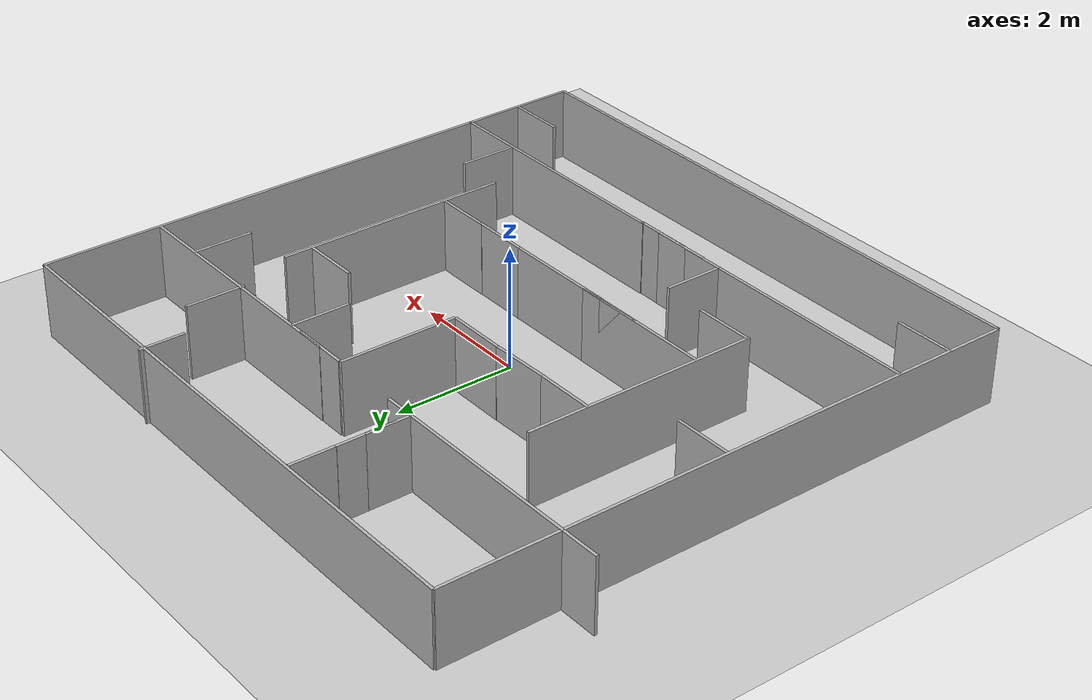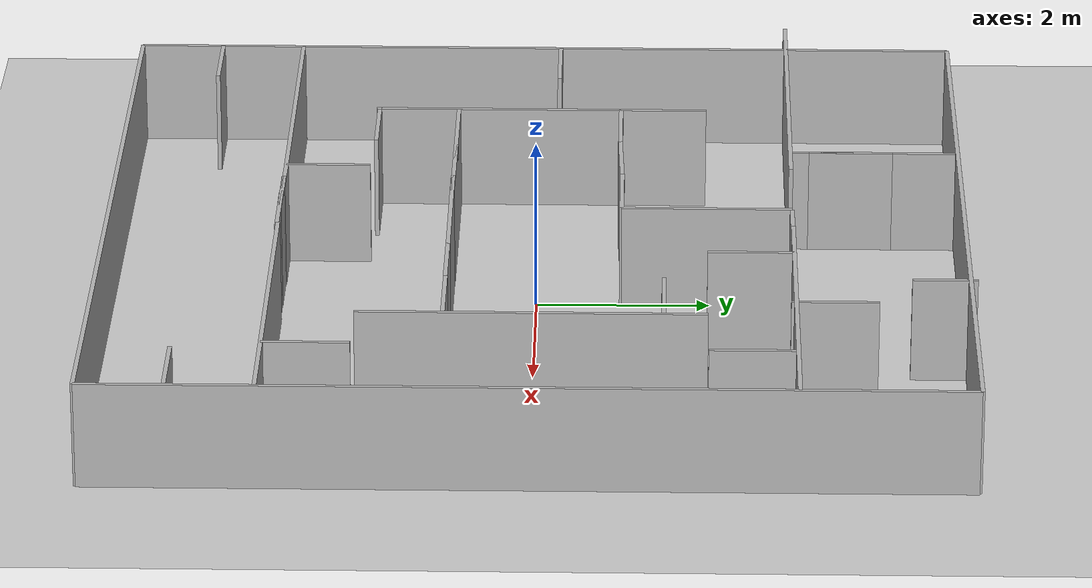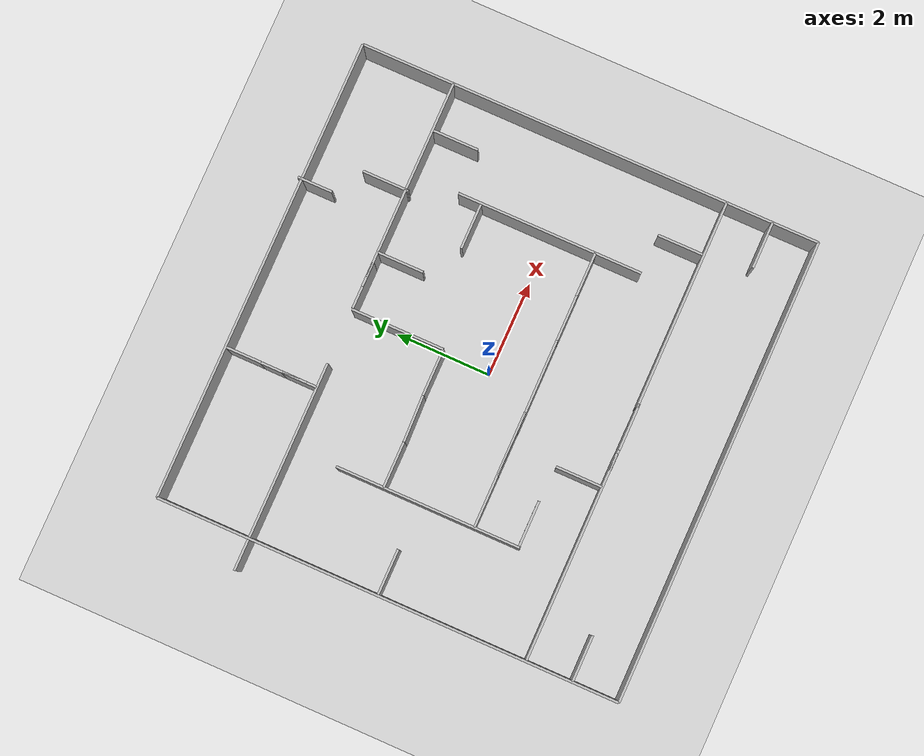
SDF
<sdf version="1.12">
 <world name="complex_maze">
  <physics name="1ms" type="ode">
   <max_step_size>0.001</max_step_size>
   <real_time_factor>1</real_time_factor>
   <real_time_update_rate>1000</real_time_update_rate>
  </physics>
  <plugin name="gz::sim::systems::Physics" filename="gz-sim-physics-system"/>
  <plugin name="gz::sim::systems::UserCommands" filename="gz-sim-user-commands-system"/>
  <plugin name="gz::sim::systems::SceneBroadcaster" filename="gz-sim-scene-broadcaster-system"/>
  <plugin name="gz::sim::systems::Contact" filename="gz-sim-contact-system"/>
  <plugin name="gz::sim::systems::Sensors" filename="gz-sim-sensors-system">
   <render_engine>ogre2</render_engine>
  </plugin>
  <gravity>0 0 -9.8000000000000007</gravity>
  <magnetic_field>5.5644999999999998e-06 2.2875799999999999e-05 -4.2388400000000002e-05</magnetic_field>
  <atmosphere type="adiabatic"/>
  <scene>
   <ambient>0.400000006 0.400000006 0.400000006 1</ambient>
   <background>0.699999988 0.699999988 0.699999988 1</background>
   <shadows>true</shadows>
  </scene>
  <model name="ground_plane">
   <static>true</static>
   <link name="link">
    <collision name="collision">
     <geometry><plane><normal>0 0 1</normal><size>49.009211999999984 49.009211999999984</size></plane></geometry>
    </collision>
    <visual name="visual">
     <geometry><plane><normal>0 0 1</normal><size>49.009211999999984 49.009211999999984</size></plane></geometry>
     <material>
      <ambient>0.800000012 0.800000012 0.800000012 1</ambient>
      <diffuse>0.800000012 0.800000012 0.800000012 1</diffuse>
      <specular>0.800000012 0.800000012 0.800000012 1</specular>
     </material>
    </visual>
    <inertial>
     <mass>1</mass>
     <inertia><ixx>1</ixx><ixy>0</ixy><ixz>0</ixz><iyy>1</iyy><iyz>0</iyz><izz>1</izz></inertia>
    </inertial>
   </link>
  </model>
  <model name="wall_1">
   <static>true</static>
   <pose>0 -4.9009211999999982 0.61261514999999978 0 0 0</pose>
   <link name="link">
    <collision name="collision">
     <geometry><box><size>9.8018423999999964 0.049009212000000003 1.2252302999999996</size></box></geometry>
    </collision>
    <visual name="visual">
     <geometry><box><size>9.8018423999999964 0.049009212000000003 1.2252302999999996</size></box></geometry>
    </visual>
    <inertial>
     <mass>1</mass>
     <inertia><ixx>1</ixx><ixy>0</ixy><ixz>0</ixz><iyy>1</iyy><iyz>0</iyz><izz>1</izz></inertia>
    </inertial>
   </link>
  </model>
  <model name="wall_2">
   <static>true</static>
   <pose>0 4.9009211999999982 0.61261514999999978 0 0 0</pose>
   <link name="link">
    <collision name="collision">
     <geometry><box><size>9.8018423999999964 0.049009212000000003 1.2252302999999996</size></box></geometry>
    </collision>
    <visual name="visual">
     <geometry><box><size>9.8018423999999964 0.049009212000000003 1.2252302999999996</size></box></geometry>
    </visual>
    <inertial>
     <mass>1</mass>
     <inertia><ixx>1</ixx><ixy>0</ixy><ixz>0</ixz><iyy>1</iyy><iyz>0</iyz><izz>1</izz></inertia>
    </inertial>
   </link>
  </model>
  <model name="wall_3">
   <static>true</static>
   <pose>-4.9009211999999982 0 0.61261514999999978 0 0 1.5708000000000013</pose>
   <link name="link">
    <collision name="collision">
     <geometry><box><size>9.8018423999999964 0.049009212000000003 1.2252302999999996</size></box></geometry>
    </collision>
    <visual name="visual">
     <geometry><box><size>9.8018423999999964 0.049009212000000003 1.2252302999999996</size></box></geometry>
    </visual>
    <inertial>
     <mass>1</mass>
     <inertia><ixx>1</ixx><ixy>0</ixy><ixz>0</ixz><iyy>1</iyy><iyz>0</iyz><izz>1</izz></inertia>
    </inertial>
   </link>
  </model>
  <model name="wall_4">
   <static>true</static>
   <pose>4.9009211999999982 0 0.61261514999999978 0 0 1.5708000000000013</pose>
   <link name="link">
    <collision name="collision">
     <geometry><box><size>9.8018423999999964 0.049009212000000003 1.2252302999999996</size></box></geometry>
    </collision>
    <visual name="visual">
     <geometry><box><size>9.8018423999999964 0.049009212000000003 1.2252302999999996</size></box></geometry>
    </visual>
    <inertial>
     <mass>1</mass>
     <inertia><ixx>1</ixx><ixy>0</ixy><ixz>0</ixz><iyy>1</iyy><iyz>0</iyz><izz>1</izz></inertia>
    </inertial>
   </link>
  </model>
  <model name="wall_5">
   <static>true</static>
   <pose>-2.6955066599999991 -2.9405527199999999 0.61261514999999978 0 0 0</pose>
   <link name="link">
    <collision name="collision">
     <geometry><box><size>4.4108290800000001 0.049009212000000003 1.2252302999999996</size></box></geometry>
    </collision>
    <visual name="visual">
     <geometry><box><size>4.4108290800000001 0.049009212000000003 1.2252302999999996</size></box></geometry>
    </visual>
    <inertial>
     <mass>1</mass>
     <inertia><ixx>1</ixx><ixy>0</ixy><ixz>0</ixz><iyy>1</iyy><iyz>0</iyz><izz>1</izz></inertia>
    </inertial>
   </link>
  </model>
  <model name="wall_6">
   <static>true</static>
   <pose>2.6955066599999991 -2.9405527199999999 0.61261514999999978 0 0 0</pose>
   <link name="link">
    <collision name="collision">
     <geometry><box><size>4.4108290800000001 0.049009212000000003 1.2252302999999996</size></box></geometry>
    </collision>
    <visual name="visual">
     <geometry><box><size>4.4108290800000001 0.049009212000000003 1.2252302999999996</size></box></geometry>
    </visual>
    <inertial>
     <mass>1</mass>
     <inertia><ixx>1</ixx><ixy>0</ixy><ixz>0</ixz><iyy>1</iyy><iyz>0</iyz><izz>1</izz></inertia>
    </inertial>
   </link>
  </model>
  <model name="wall_7">
   <static>true</static>
   <pose>-1.7050595283508301 -0.98018401861190796 0.61261498928070068 0 0 0</pose>
   <link name="link">
    <collision name="collision">
     <geometry><box><size>2.4504605999999991 0.049009212000000003 1.2252302999999996</size></box></geometry>
    </collision>
    <visual name="visual">
     <geometry><box><size>2.4504605999999991 0.049009212000000003 1.2252302999999996</size></box></geometry>
    </visual>
    <inertial>
     <mass>1</mass>
     <inertia><ixx>1</ixx><ixy>0</ixy><ixz>0</ixz><iyy>1</iyy><iyz>0</iyz><izz>1</izz></inertia>
    </inertial>
   </link>
  </model>
  <model name="wall_8">
   <static>true</static>
   <pose>-1.3515255038600635 -0.98018423999999993 0.61261514999999978 0 0 0</pose>
   <link name="link">
    <collision name="collision">
     <geometry><box><size>0.98018423999999993 0.049009212000000003 1.2252302999999996</size></box></geometry>
    </collision>
    <visual name="visual">
     <geometry><box><size>0.98018423999999993 0.049009212000000003 1.2252302999999996</size></box></geometry>
    </visual>
    <inertial>
     <mass>1</mass>
     <inertia><ixx>1</ixx><ixy>0</ixy><ixz>0</ixz><iyy>1</iyy><iyz>0</iyz><izz>1</izz></inertia>
    </inertial>
   </link>
  </model>
  <model name="wall_9">
   <static>true</static>
   <pose>1.5323846656936739 -0.98018423999999993 0.61261514999999978 0 0 0</pose>
   <link name="link">
    <collision name="collision">
     <geometry><box><size>0.98018423999999993 0.049009212000000003 1.2252302999999996</size></box></geometry>
    </collision>
    <visual name="visual">
     <geometry><box><size>0.98018423999999993 0.049009212000000003 1.2252302999999996</size></box></geometry>
    </visual>
    <inertial>
     <mass>1</mass>
     <inertia><ixx>1</ixx><ixy>0</ixy><ixz>0</ixz><iyy>1</iyy><iyz>0</iyz><izz>1</izz></inertia>
    </inertial>
   </link>
  </model>
  <model name="wall_12">
   <static>true</static>
   <pose>-0.49801604541688427 0.98018423999999993 0.61261514999999978 0 0 0</pose>
   <link name="link">
    <collision name="collision">
     <geometry><box><size>0.98018423999999993 0.049009212000000003 1.2252302999999996</size></box></geometry>
    </collision>
    <visual name="visual">
     <geometry><box><size>0.98018423999999993 0.049009212000000003 1.2252302999999996</size></box></geometry>
    </visual>
    <inertial>
     <mass>1</mass>
     <inertia><ixx>1</ixx><ixy>0</ixy><ixz>0</ixz><iyy>1</iyy><iyz>0</iyz><izz>1</izz></inertia>
    </inertial>
   </link>
  </model>
  <model name="wall_15">
   <static>true</static>
   <pose>-3.373927116394043 2.9405500888824463 0.61261498928070068 0 0 0</pose>
   <link name="link">
    <collision name="collision">
     <geometry><box><size>4.4108290800000001 0.049009212000000003 1.2252302999999996</size></box></geometry>
    </collision>
    <visual name="visual">
     <geometry><box><size>4.4108290800000001 0.049009212000000003 1.2252302999999996</size></box></geometry>
    </visual>
    <inertial>
     <mass>1</mass>
     <inertia><ixx>1</ixx><ixy>0</ixy><ixz>0</ixz><iyy>1</iyy><iyz>0</iyz><izz>1</izz></inertia>
    </inertial>
   </link>
  </model>
  <model name="wall_16">
   <static>true</static>
   <pose>2.6955066599999991 2.9405527199999999 0.61261514999999978 0 0 0</pose>
   <link name="link">
    <collision name="collision">
     <geometry><box><size>4.4108290800000001 0.049009212000000003 1.2252302999999996</size></box></geometry>
    </collision>
    <visual name="visual">
     <geometry><box><size>4.4108290800000001 0.049009212000000003 1.2252302999999996</size></box></geometry>
    </visual>
    <inertial>
     <mass>1</mass>
     <inertia><ixx>1</ixx><ixy>0</ixy><ixz>0</ixz><iyy>1</iyy><iyz>0</iyz><izz>1</izz></inertia>
    </inertial>
   </link>
  </model>
  <model name="wall_17">
   <static>true</static>
   <pose>-1.6781930960284417 3.6499424803424829 0.61261514999999978 0 0 1.5708000357176291</pose>
   <link name="link">
    <collision name="collision">
     <geometry><box><size>0.98018423999999993 0.049009212000000003 1.2252302999999996</size></box></geometry>
    </collision>
    <visual name="visual">
     <geometry><box><size>0.98018423999999993 0.049009212000000003 1.2252302999999996</size></box></geometry>
    </visual>
    <inertial>
     <mass>1</mass>
     <inertia><ixx>1</ixx><ixy>0</ixy><ixz>0</ixz><iyy>1</iyy><iyz>0</iyz><izz>1</izz></inertia>
    </inertial>
   </link>
  </model>
  <model name="wall_18">
   <static>true</static>
   <pose>-2.9405527199999999 0 0.61261514999999978 0 0 1.5708000000000013</pose>
   <link name="link">
    <collision name="collision">
     <geometry><box><size>3.9207369599999997 0.049009212000000003 1.2252302999999996</size></box></geometry>
    </collision>
    <visual name="visual">
     <geometry><box><size>3.9207369599999997 0.049009212000000003 1.2252302999999996</size></box></geometry>
    </visual>
    <inertial>
     <mass>1</mass>
     <inertia><ixx>1</ixx><ixy>0</ixy><ixz>0</ixz><iyy>1</iyy><iyz>0</iyz><izz>1</izz></inertia>
    </inertial>
   </link>
  </model>
  <model name="wall_20">
   <static>true</static>
   <pose>-1.4790867456897638 0.9634183801852938 0.61261514999999978 0 0 0.030003099442409507</pose>
   <link name="link">
    <collision name="collision">
     <geometry><box><size>0.98018423999999993 0.049009212000000003 1.2252302999999996</size></box></geometry>
    </collision>
    <visual name="visual">
     <geometry><box><size>0.98018423999999993 0.049009212000000003 1.2252302999999996</size></box></geometry>
    </visual>
    <inertial>
     <mass>1</mass>
     <inertia><ixx>1</ixx><ixy>0</ixy><ixz>0</ixz><iyy>1</iyy><iyz>0</iyz><izz>1</izz></inertia>
    </inertial>
   </link>
  </model>
  <model name="wall_21">
   <static>true</static>
   <pose>2.9405527199999999 0 0.61261514999999978 0 0 1.5708000000000013</pose>
   <link name="link">
    <collision name="collision">
     <geometry><box><size>3.9207369599999997 0.049009212000000003 1.2252302999999996</size></box></geometry>
    </collision>
    <visual name="visual">
     <geometry><box><size>3.9207369599999997 0.049009212000000003 1.2252302999999996</size></box></geometry>
    </visual>
    <inertial>
     <mass>1</mass>
     <inertia><ixx>1</ixx><ixy>0</ixy><ixz>0</ixz><iyy>1</iyy><iyz>0</iyz><izz>1</izz></inertia>
    </inertial>
   </link>
  </model>
  <model name="wall_22">
   <static>true</static>
   <pose>2.58518385887146 3.3730485439300537 0.61261498928070068 0 0 1.5708000357176291</pose>
   <link name="link">
    <collision name="collision">
     <geometry><box><size>0.98018423999999993 0.049009212000000003 1.2252302999999996</size></box></geometry>
    </collision>
    <visual name="visual">
     <geometry><box><size>0.98018423999999993 0.049009212000000003 1.2252302999999996</size></box></geometry>
    </visual>
    <inertial>
     <mass>1</mass>
     <inertia><ixx>1</ixx><ixy>0</ixy><ixz>0</ixz><iyy>1</iyy><iyz>0</iyz><izz>1</izz></inertia>
    </inertial>
   </link>
  </model>
  <model name="wall_23">
   <static>true</static>
   <pose>0.077949759150531289 -0.98263463983952493 0.61261514999999978 0 0 0.0034538498982187547</pose>
   <link name="link">
    <collision name="collision">
     <geometry><box><size>1.9603684799999999 0.049009212000000003 1.2252302999999996</size></box></geometry>
    </collision>
    <visual name="visual">
     <geometry><box><size>1.9603684799999999 0.049009212000000003 1.2252302999999996</size></box></geometry>
    </visual>
    <inertial>
     <mass>1</mass>
     <inertia><ixx>1</ixx><ixy>0</ixy><ixz>0</ixz><iyy>1</iyy><iyz>0</iyz><izz>1</izz></inertia>
    </inertial>
   </link>
  </model>
  <model name="wall_24">
   <static>true</static>
   <pose>0 1.9603684799999999 0.61261514999999978 0 0 1.5708000000000013</pose>
   <link name="link">
    <collision name="collision">
     <geometry><box><size>1.9603684799999999 0.049009212000000003 1.2252302999999996</size></box></geometry>
    </collision>
    <visual name="visual">
     <geometry><box><size>1.9603684799999999 0.049009212000000003 1.2252302999999996</size></box></geometry>
    </visual>
    <inertial>
     <mass>1</mass>
     <inertia><ixx>1</ixx><ixy>0</ixy><ixz>0</ixz><iyy>1</iyy><iyz>0</iyz><izz>1</izz></inertia>
    </inertial>
   </link>
  </model>
  <model name="wall_25">
   <static>true</static>
   <pose>-4.4108290800000001 -3.9207369599999997 0.61261514999999978 0 0 0</pose>
   <link name="link">
    <collision name="collision">
     <geometry><box><size>0.98018423999999993 0.049009212000000003 1.2252302999999996</size></box></geometry>
    </collision>
    <visual name="visual">
     <geometry><box><size>0.98018423999999993 0.049009212000000003 1.2252302999999996</size></box></geometry>
    </visual>
    <inertial>
     <mass>1</mass>
     <inertia><ixx>1</ixx><ixy>0</ixy><ixz>0</ixz><iyy>1</iyy><iyz>0</iyz><izz>1</izz></inertia>
    </inertial>
   </link>
  </model>
  <model name="wall_26">
   <static>true</static>
   <pose>-0.37076742791461936 -2.9481629694658467 0.61261514999999978 0 0 0</pose>
   <link name="link">
    <collision name="collision">
     <geometry><box><size>0.98018423999999993 0.049009212000000003 1.2252302999999996</size></box></geometry>
    </collision>
    <visual name="visual">
     <geometry><box><size>0.98018423999999993 0.049009212000000003 1.2252302999999996</size></box></geometry>
    </visual>
    <inertial>
     <mass>1</mass>
     <inertia><ixx>1</ixx><ixy>0</ixy><ixz>0</ixz><iyy>1</iyy><iyz>0</iyz><izz>1</izz></inertia>
    </inertial>
   </link>
  </model>
  <model name="wall_27">
   <static>true</static>
   <pose>-1.6753014816643805 4.5064492413217154 0.61261514999999978 0 0 1.5708000357176291</pose>
   <link name="link">
    <collision name="collision">
     <geometry><box><size>0.73513817999999997 0.049009212000000003 1.2252302999999996</size></box></geometry>
    </collision>
    <visual name="visual">
     <geometry><box><size>0.73513817999999997 0.049009212000000003 1.2252302999999996</size></box></geometry>
    </visual>
    <inertial>
     <mass>1</mass>
     <inertia><ixx>1</ixx><ixy>0</ixy><ixz>0</ixz><iyy>1</iyy><iyz>0</iyz><izz>1</izz></inertia>
    </inertial>
   </link>
  </model>
  <model name="wall_28">
   <static>true</static>
   <pose>0.073131497318347671 -2.9521189437621107 0.61261514999999978 0 0 0</pose>
   <link name="link">
    <collision name="collision">
     <geometry><box><size>0.98018423999999993 0.049009212000000003 1.2252302999999996</size></box></geometry>
    </collision>
    <visual name="visual">
     <geometry><box><size>0.98018423999999993 0.049009212000000003 1.2252302999999996</size></box></geometry>
    </visual>
    <inertial>
     <mass>1</mass>
     <inertia><ixx>1</ixx><ixy>0</ixy><ixz>0</ixz><iyy>1</iyy><iyz>0</iyz><izz>1</izz></inertia>
    </inertial>
   </link>
  </model>
  <model name="wall_29">
   <static>true</static>
   <pose>4.4108290800000001 -3.9207369599999997 0.61261514999999978 0 0 0</pose>
   <link name="link">
    <collision name="collision">
     <geometry><box><size>0.98018423999999993 0.049009212000000003 1.2252302999999996</size></box></geometry>
    </collision>
    <visual name="visual">
     <geometry><box><size>0.98018423999999993 0.049009212000000003 1.2252302999999996</size></box></geometry>
    </visual>
    <inertial>
     <mass>1</mass>
     <inertia><ixx>1</ixx><ixy>0</ixy><ixz>0</ixz><iyy>1</iyy><iyz>0</iyz><izz>1</izz></inertia>
    </inertial>
   </link>
  </model>
  <model name="wall_30">
   <static>true</static>
   <pose>-1.6784139369848436 3.3120576866007609 0.61261514999999978 0 0 1.5708000357176291</pose>
   <link name="link">
    <collision name="collision">
     <geometry><box><size>0.73513817999999997 0.049009212000000003 1.2252302999999996</size></box></geometry>
    </collision>
    <visual name="visual">
     <geometry><box><size>0.73513817999999997 0.049009212000000003 1.2252302999999996</size></box></geometry>
    </visual>
    <inertial>
     <mass>1</mass>
     <inertia><ixx>1</ixx><ixy>0</ixy><ixz>0</ixz><iyy>1</iyy><iyz>0</iyz><izz>1</izz></inertia>
    </inertial>
   </link>
  </model>
  <model name="wall_32">
   <static>true</static>
   <pose>3.7650925159454345 -2.450460624694824 0.61261478066444397 0 0 1.5708000357176291</pose>
   <link name="link">
    <collision name="collision">
     <geometry><box><size>0.98018423999999993 0.049009212000000003 1.2252302999999996</size></box></geometry>
    </collision>
    <visual name="visual">
     <geometry><box><size>0.98018423999999993 0.049009212000000003 1.2252302999999996</size></box></geometry>
    </visual>
    <inertial>
     <mass>1</mass>
     <inertia><ixx>1</ixx><ixy>0</ixy><ixz>0</ixz><iyy>1</iyy><iyz>0</iyz><izz>1</izz></inertia>
    </inertial>
   </link>
  </model>
  <model name="wall_33">
   <static>true</static>
   <pose>-4.4108259201049798 0.20045450031757353 0.61261478066444397 0 0 0</pose>
   <link name="link">
    <collision name="collision">
     <geometry><box><size>0.98018423999999993 0.049009212000000003 1.2252302999999996</size></box></geometry>
    </collision>
    <visual name="visual">
     <geometry><box><size>0.98018423999999993 0.049009212000000003 1.2252302999999996</size></box></geometry>
    </visual>
    <inertial>
     <mass>1</mass>
     <inertia><ixx>1</ixx><ixy>0</ixy><ixz>0</ixz><iyy>1</iyy><iyz>0</iyz><izz>1</izz></inertia>
    </inertial>
   </link>
  </model>
  <model name="wall_35">
   <static>true</static>
   <pose>-1.2118786215782165 -2.4504609584808348 0.61261478066444397 0 0 1.5708000357176291</pose>
   <link name="link">
    <collision name="collision">
     <geometry><box><size>0.98018423999999993 0.049009212000000003 1.2252302999999996</size></box></geometry>
    </collision>
    <visual name="visual">
     <geometry><box><size>0.98018423999999993 0.049009212000000003 1.2252302999999996</size></box></geometry>
    </visual>
    <inertial>
     <mass>1</mass>
     <inertia><ixx>1</ixx><ixy>0</ixy><ixz>0</ixz><iyy>1</iyy><iyz>0</iyz><izz>1</izz></inertia>
    </inertial>
   </link>
  </model>
  <model name="wall_37">
   <static>true</static>
   <pose>-2.4504605999999991 -1.9244314634988779 0.61261514999999978 0 0 0</pose>
   <link name="link">
    <collision name="collision">
     <geometry><box><size>0.98018423999999993 0.049009212000000003 1.2252302999999996</size></box></geometry>
    </collision>
    <visual name="visual">
     <geometry><box><size>0.98018423999999993 0.049009212000000003 1.2252302999999996</size></box></geometry>
    </visual>
    <inertial>
     <mass>1</mass>
     <inertia><ixx>1</ixx><ixy>0</ixy><ixz>0</ixz><iyy>1</iyy><iyz>0</iyz><izz>1</izz></inertia>
    </inertial>
   </link>
  </model>
  <model name="wall_38">
   <static>true</static>
   <pose>2.4504605999999991 -0.9769695434960175 0.61261514999999978 0 0 0</pose>
   <link name="link">
    <collision name="collision">
     <geometry><box><size>0.98018423999999993 0.049009212000000003 1.2252302999999996</size></box></geometry>
    </collision>
    <visual name="visual">
     <geometry><box><size>0.98018423999999993 0.049009212000000003 1.2252302999999996</size></box></geometry>
    </visual>
    <inertial>
     <mass>1</mass>
     <inertia><ixx>1</ixx><ixy>0</ixy><ixz>0</ixz><iyy>1</iyy><iyz>0</iyz><izz>1</izz></inertia>
    </inertial>
   </link>
  </model>
  <model name="wall_46">
   <static>true</static>
   <pose>1.2315318584442139 2.4504594564437863 0.61261478066444397 0 0 1.5708000357176291</pose>
   <link name="link">
    <collision name="collision">
     <geometry><box><size>0.98018423999999993 0.049009212000000003 1.2252302999999996</size></box></geometry>
    </collision>
    <visual name="visual">
     <geometry><box><size>0.98018423999999993 0.049009212000000003 1.2252302999999996</size></box></geometry>
    </visual>
    <inertial>
     <mass>1</mass>
     <inertia><ixx>1</ixx><ixy>0</ixy><ixz>0</ixz><iyy>1</iyy><iyz>0</iyz><izz>1</izz></inertia>
    </inertial>
   </link>
  </model>
  <model name="wall_47">
   <static>true</static>
   <pose>-2.4504605999999991 0.94993393654975866 0.61261514999999978 0 0 0</pose>
   <link name="link">
    <collision name="collision">
     <geometry><box><size>0.98018423999999993 0.049009212000000003 1.2252302999999996</size></box></geometry>
    </collision>
    <visual name="visual">
     <geometry><box><size>0.98018423999999993 0.049009212000000003 1.2252302999999996</size></box></geometry>
    </visual>
    <inertial>
     <mass>1</mass>
     <inertia><ixx>1</ixx><ixy>0</ixy><ixz>0</ixz><iyy>1</iyy><iyz>0</iyz><izz>1</izz></inertia>
    </inertial>
   </link>
  </model>
  <model name="wall_48">
   <static>true</static>
   <pose>2.4504605999999991 1.4702763599999999 0.61261514999999978 0 0 0</pose>
   <link name="link">
    <collision name="collision">
     <geometry><box><size>0.98018423999999993 0.049009212000000003 1.2252302999999996</size></box></geometry>
    </collision>
    <visual name="visual">
     <geometry><box><size>0.98018423999999993 0.049009212000000003 1.2252302999999996</size></box></geometry>
    </visual>
    <inertial>
     <mass>1</mass>
     <inertia><ixx>1</ixx><ixy>0</ixy><ixz>0</ixz><iyy>1</iyy><iyz>0</iyz><izz>1</izz></inertia>
    </inertial>
   </link>
  </model>
  <model name="wall_50">
   <static>true</static>
   <pose>3.8858833312988277 2.45046112537384 0.61261478066444397 0 0 1.5708000357176291</pose>
   <link name="link">
    <collision name="collision">
     <geometry><box><size>0.98018423999999993 0.049009212000000003 1.2252302999999996</size></box></geometry>
    </collision>
    <visual name="visual">
     <geometry><box><size>0.98018423999999993 0.049009212000000003 1.2252302999999996</size></box></geometry>
    </visual>
    <inertial>
     <mass>1</mass>
     <inertia><ixx>1</ixx><ixy>0</ixy><ixz>0</ixz><iyy>1</iyy><iyz>0</iyz><izz>1</izz></inertia>
    </inertial>
   </link>
  </model>
  <model name="wall_57">
   <static>true</static>
   <pose>0.51577399525292855 2.9354165903282539 0.61261514999999978 0 0 0</pose>
   <link name="link">
    <collision name="collision">
     <geometry><box><size>0.98018423999999993 0.049009212000000003 1.2252302999999996</size></box></geometry>
    </collision>
    <visual name="visual">
     <geometry><box><size>0.98018423999999993 0.049009212000000003 1.2252302999999996</size></box></geometry>
    </visual>
    <inertial>
     <mass>1</mass>
     <inertia><ixx>1</ixx><ixy>0</ixy><ixz>0</ixz><iyy>1</iyy><iyz>0</iyz><izz>1</izz></inertia>
    </inertial>
   </link>
  </model>
  <model name="wall_62">
   <static>true</static>
   <pose>1.9603721380233763 4.6143335819244378 0.61261478066444397 0 0 1.5708000357176291</pose>
   <link name="link">
    <collision name="collision">
     <geometry><box><size>0.73513817999999997 0.049009212000000003 1.2252302999999996</size></box></geometry>
    </collision>
    <visual name="visual">
     <geometry><box><size>0.73513817999999997 0.049009212000000003 1.2252302999999996</size></box></geometry>
    </visual>
    <inertial>
     <mass>1</mass>
     <inertia><ixx>1</ixx><ixy>0</ixy><ixz>0</ixz><iyy>1</iyy><iyz>0</iyz><izz>1</izz></inertia>
    </inertial>
   </link>
  </model>
  <light name="sun" type="directional">
   <pose>0 0 4.9009211999999982 0 0 0</pose>
   <intensity>1</intensity>
   <direction>-0.5 0.10000000000000001 -0.90000000000000002</direction>
   <diffuse>0.800000012 0.800000012 0.800000012 1</diffuse>
   <specular>0.200000003 0.200000003 0.200000003 1</specular>
   <attenuation>
    <range>1000</range>
    <linear>0.0099999997764825821</linear>
    <constant>0.89999997615814209</constant>
    <quadratic>0.0010000000474974513</quadratic>
   </attenuation>
   <spot><inner_angle>0</inner_angle><outer_angle>0</outer_angle><falloff>0</falloff></spot>
  </light>
 </world>
</sdf>
